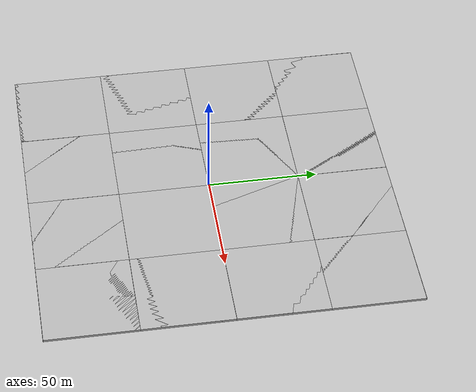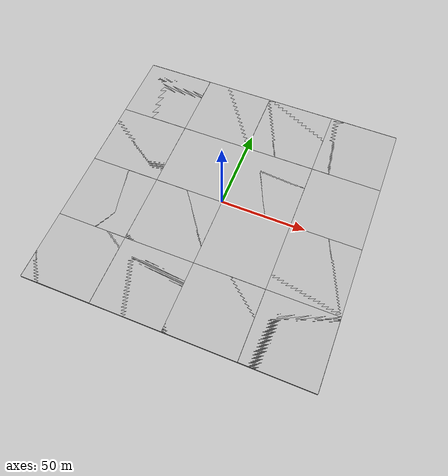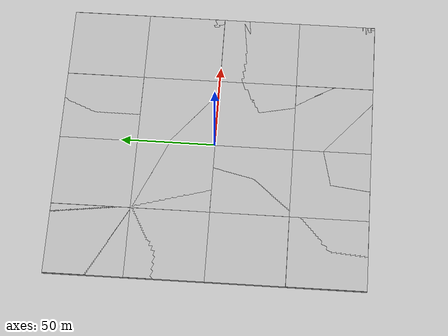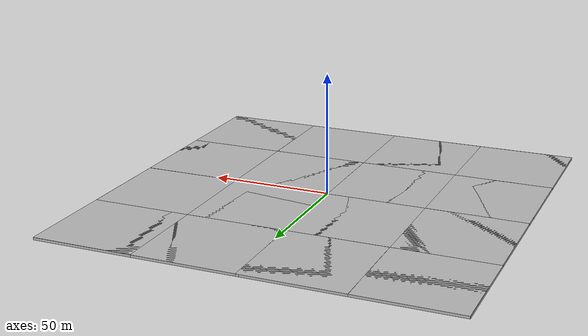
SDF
<sdf version="1.7">
 <world name="default">
  <physics type="ode">
   <ode>
    <solver>
     <type>quick</type>
     <iters>100</iters>
     <sor>1</sor>
     <use_dynamic_moi_rescaling>0</use_dynamic_moi_rescaling>
    </solver>
    <constraints>
     <cfm>0</cfm>
     <erp>0.9</erp>
     <contact_max_correcting_vel>0.1</contact_max_correcting_vel>
     <contact_surface_layer>0</contact_surface_layer>
    </constraints>
   </ode>
   <real_time_update_rate>1000</real_time_update_rate>
   <max_step_size>0.001</max_step_size>
   <real_time_factor>1</real_time_factor>
  </physics>
  <scene>
   <sky><clouds><speed>12</speed></clouds></sky>
   <ambient>0.4 0.4 0.4 1</ambient>
   <background>0.25 0.25 0.25 1</background>
   <shadows>1</shadows>
  </scene>
  <model name="ground_plane">
   <static>1</static>
   <link name="link">
    <collision name="collision">
     <geometry><plane><normal>0 0 1</normal><size>5000 5000</size></plane></geometry>
     <surface><friction><ode><mu>1</mu><mu2>1</mu2></ode></friction></surface>
    </collision>
   </link>
  </model>
  <light name="sun" type="directional">
   <pose>0 0 10 0 -0 0</pose>
   <diffuse>0.8 0.8 0.8 1</diffuse>
   <specular>0.2 0.2 0.2 1</specular>
   <attenuation>
    <range>1000</range>
    <constant>0.9</constant>
    <linear>0.01</linear>
    <quadratic>0.001</quadratic>
   </attenuation>
   <direction>-0.5 0.1 -0.9</direction>
   <spot><inner_angle>0</inner_angle><outer_angle>0</outer_angle><falloff>0</falloff></spot>
  </light>
  <plugin name="map" filename="libStaticMapPlugin.so">
   <center>29.72055 -95.40016</center>
   <world_size>150</world_size>
   <tile_size>640</tile_size>
   <map_type>satellite</map_type>
   <api_key>your_google_map_api</api_key>
   <use_cache>0</use_cache>
  </plugin>
  <gravity>0 0 -9.8</gravity>
  <magnetic_field>6e-06 2.3e-05 -4.2e-05</magnetic_field>
  <atmosphere type="adiabatic"/>
  <spherical_coordinates>
   <surface_model>EARTH_WGS84</surface_model>
   <latitude_deg>0</latitude_deg>
   <longitude_deg>0</longitude_deg>
   <elevation>0</elevation>
   <heading_deg>0</heading_deg>
  </spherical_coordinates>
  <model name="map_satellite_29.72055_-95.40016_150_150">
   <static>1</static>
   <link name="link">
    <collision name="collision">
     <pose>0 0 -0.5 0 -0 0</pose>
     <geometry><box><size>165.955 165.955 1</size></box></geometry>
    </collision>
    <visual name="visual0_0">
     <pose>-62.2331 62.2331 -0.5 0 -0 1.5708</pose>
     <geometry><box><size>41.4888 41.4888 1</size></box></geometry>
     <material>
      <script>
       <uri>model://map_satellite_29.72055_-95.40016_150_150/materials/scripts</uri>
       <uri>model://map_satellite_29.72055_-95.40016_150_150/materials/textures</uri>
       <name>map_satellite_29.72055_-95.40016_150_150/0_0</name>
      </script>
     </material>
    </visual>
    <visual name="visual0_1">
     <pose>-20.7444 62.2331 -0.5 0 -0 1.5708</pose>
     <geometry><box><size>41.4888 41.4888 1</size></box></geometry>
     <material>
      <script>
       <uri>model://map_satellite_29.72055_-95.40016_150_150/materials/scripts</uri>
       <uri>model://map_satellite_29.72055_-95.40016_150_150/materials/textures</uri>
       <name>map_satellite_29.72055_-95.40016_150_150/0_1</name>
      </script>
     </material>
    </visual>
    <visual name="visual0_2">
     <pose>20.7444 62.2331 -0.5 0 -0 1.5708</pose>
     <geometry><box><size>41.4888 41.4888 1</size></box></geometry>
     <material>
      <script>
       <uri>model://map_satellite_29.72055_-95.40016_150_150/materials/scripts</uri>
       <uri>model://map_satellite_29.72055_-95.40016_150_150/materials/textures</uri>
       <name>map_satellite_29.72055_-95.40016_150_150/0_2</name>
      </script>
     </material>
    </visual>
    <visual name="visual0_3">
     <pose>62.2331 62.2331 -0.5 0 -0 1.5708</pose>
     <geometry><box><size>41.4888 41.4888 1</size></box></geometry>
     <material>
      <script>
       <uri>model://map_satellite_29.72055_-95.40016_150_150/materials/scripts</uri>
       <uri>model://map_satellite_29.72055_-95.40016_150_150/materials/textures</uri>
       <name>map_satellite_29.72055_-95.40016_150_150/0_3</name>
      </script>
     </material>
    </visual>
    <visual name="visual1_0">
     <pose>-62.2331 20.7444 -0.5 0 -0 1.5708</pose>
     <geometry><box><size>41.4888 41.4888 1</size></box></geometry>
     <material>
      <script>
       <uri>model://map_satellite_29.72055_-95.40016_150_150/materials/scripts</uri>
       <uri>model://map_satellite_29.72055_-95.40016_150_150/materials/textures</uri>
       <name>map_satellite_29.72055_-95.40016_150_150/1_0</name>
      </script>
     </material>
    </visual>
    <visual name="visual1_1">
     <pose>-20.7444 20.7444 -0.5 0 -0 1.5708</pose>
     <geometry><box><size>41.4888 41.4888 1</size></box></geometry>
     <material>
      <script>
       <uri>model://map_satellite_29.72055_-95.40016_150_150/materials/scripts</uri>
       <uri>model://map_satellite_29.72055_-95.40016_150_150/materials/textures</uri>
       <name>map_satellite_29.72055_-95.40016_150_150/1_1</name>
      </script>
     </material>
    </visual>
    <visual name="visual1_2">
     <pose>20.7444 20.7444 -0.5 0 -0 1.5708</pose>
     <geometry><box><size>41.4888 41.4888 1</size></box></geometry>
     <material>
      <script>
       <uri>model://map_satellite_29.72055_-95.40016_150_150/materials/scripts</uri>
       <uri>model://map_satellite_29.72055_-95.40016_150_150/materials/textures</uri>
       <name>map_satellite_29.72055_-95.40016_150_150/1_2</name>
      </script>
     </material>
    </visual>
    <visual name="visual1_3">
     <pose>62.2331 20.7444 -0.5 0 -0 1.5708</pose>
     <geometry><box><size>41.4888 41.4888 1</size></box></geometry>
     <material>
      <script>
       <uri>model://map_satellite_29.72055_-95.40016_150_150/materials/scripts</uri>
       <uri>model://map_satellite_29.72055_-95.40016_150_150/materials/textures</uri>
       <name>map_satellite_29.72055_-95.40016_150_150/1_3</name>
      </script>
     </material>
    </visual>
    <visual name="visual2_0">
     <pose>-62.2331 -20.7444 -0.5 0 -0 1.5708</pose>
     <geometry><box><size>41.4888 41.4888 1</size></box></geometry>
     <material>
      <script>
       <uri>model://map_satellite_29.72055_-95.40016_150_150/materials/scripts</uri>
       <uri>model://map_satellite_29.72055_-95.40016_150_150/materials/textures</uri>
       <name>map_satellite_29.72055_-95.40016_150_150/2_0</name>
      </script>
     </material>
    </visual>
    <visual name="visual2_1">
     <pose>-20.7444 -20.7444 -0.5 0 -0 1.5708</pose>
     <geometry><box><size>41.4888 41.4888 1</size></box></geometry>
     <material>
      <script>
       <uri>model://map_satellite_29.72055_-95.40016_150_150/materials/scripts</uri>
       <uri>model://map_satellite_29.72055_-95.40016_150_150/materials/textures</uri>
       <name>map_satellite_29.72055_-95.40016_150_150/2_1</name>
      </script>
     </material>
    </visual>
    <visual name="visual2_2">
     <pose>20.7444 -20.7444 -0.5 0 -0 1.5708</pose>
     <geometry><box><size>41.4888 41.4888 1</size></box></geometry>
     <material>
      <script>
       <uri>model://map_satellite_29.72055_-95.40016_150_150/materials/scripts</uri>
       <uri>model://map_satellite_29.72055_-95.40016_150_150/materials/textures</uri>
       <name>map_satellite_29.72055_-95.40016_150_150/2_2</name>
      </script>
     </material>
    </visual>
    <visual name="visual2_3">
     <pose>62.2331 -20.7444 -0.5 0 -0 1.5708</pose>
     <geometry><box><size>41.4888 41.4888 1</size></box></geometry>
     <material>
      <script>
       <uri>model://map_satellite_29.72055_-95.40016_150_150/materials/scripts</uri>
       <uri>model://map_satellite_29.72055_-95.40016_150_150/materials/textures</uri>
       <name>map_satellite_29.72055_-95.40016_150_150/2_3</name>
      </script>
     </material>
    </visual>
    <visual name="visual3_0">
     <pose>-62.2331 -62.2331 -0.5 0 -0 1.5708</pose>
     <geometry><box><size>41.4888 41.4888 1</size></box></geometry>
     <material>
      <script>
       <uri>model://map_satellite_29.72055_-95.40016_150_150/materials/scripts</uri>
       <uri>model://map_satellite_29.72055_-95.40016_150_150/materials/textures</uri>
       <name>map_satellite_29.72055_-95.40016_150_150/3_0</name>
      </script>
     </material>
    </visual>
    <visual name="visual3_1">
     <pose>-20.7444 -62.2331 -0.5 0 -0 1.5708</pose>
     <geometry><box><size>41.4888 41.4888 1</size></box></geometry>
     <material>
      <script>
       <uri>model://map_satellite_29.72055_-95.40016_150_150/materials/scripts</uri>
       <uri>model://map_satellite_29.72055_-95.40016_150_150/materials/textures</uri>
       <name>map_satellite_29.72055_-95.40016_150_150/3_1</name>
      </script>
     </material>
    </visual>
    <visual name="visual3_2">
     <pose>20.7444 -62.2331 -0.5 0 -0 1.5708</pose>
     <geometry><box><size>41.4888 41.4888 1</size></box></geometry>
     <material>
      <script>
       <uri>model://map_satellite_29.72055_-95.40016_150_150/materials/scripts</uri>
       <uri>model://map_satellite_29.72055_-95.40016_150_150/materials/textures</uri>
       <name>map_satellite_29.72055_-95.40016_150_150/3_2</name>
      </script>
     </material>
    </visual>
    <visual name="visual3_3">
     <pose>62.2331 -62.2331 -0.5 0 -0 1.5708</pose>
     <geometry><box><size>41.4888 41.4888 1</size></box></geometry>
     <material>
      <script>
       <uri>model://map_satellite_29.72055_-95.40016_150_150/materials/scripts</uri>
       <uri>model://map_satellite_29.72055_-95.40016_150_150/materials/textures</uri>
       <name>map_satellite_29.72055_-95.40016_150_150/3_3</name>
      </script>
     </material>
    </visual>
   </link>
  </model>
  <model name="map_satellite_29.72055_-95.40016_150_150_0">
   <static>1</static>
   <link name="link">
    <collision name="collision">
     <pose>0 0 -0.5 0 -0 0</pose>
     <geometry><box><size>165.955 165.955 1</size></box></geometry>
    </collision>
    <visual name="visual0_0">
     <pose>-62.2331 62.2331 -0.5 0 -0 1.5708</pose>
     <geometry><box><size>41.4888 41.4888 1</size></box></geometry>
     <material>
      <script>
       <uri>model://map_satellite_29.72055_-95.40016_150_150/materials/scripts</uri>
       <uri>model://map_satellite_29.72055_-95.40016_150_150/materials/textures</uri>
       <name>map_satellite_29.72055_-95.40016_150_150/0_0</name>
      </script>
     </material>
    </visual>
    <visual name="visual0_1">
     <pose>-20.7444 62.2331 -0.5 0 -0 1.5708</pose>
     <geometry><box><size>41.4888 41.4888 1</size></box></geometry>
     <material>
      <script>
       <uri>model://map_satellite_29.72055_-95.40016_150_150/materials/scripts</uri>
       <uri>model://map_satellite_29.72055_-95.40016_150_150/materials/textures</uri>
       <name>map_satellite_29.72055_-95.40016_150_150/0_1</name>
      </script>
     </material>
    </visual>
    <visual name="visual0_2">
     <pose>20.7444 62.2331 -0.5 0 -0 1.5708</pose>
     <geometry><box><size>41.4888 41.4888 1</size></box></geometry>
     <material>
      <script>
       <uri>model://map_satellite_29.72055_-95.40016_150_150/materials/scripts</uri>
       <uri>model://map_satellite_29.72055_-95.40016_150_150/materials/textures</uri>
       <name>map_satellite_29.72055_-95.40016_150_150/0_2</name>
      </script>
     </material>
    </visual>
    <visual name="visual0_3">
     <pose>62.2331 62.2331 -0.5 0 -0 1.5708</pose>
     <geometry><box><size>41.4888 41.4888 1</size></box></geometry>
     <material>
      <script>
       <uri>model://map_satellite_29.72055_-95.40016_150_150/materials/scripts</uri>
       <uri>model://map_satellite_29.72055_-95.40016_150_150/materials/textures</uri>
       <name>map_satellite_29.72055_-95.40016_150_150/0_3</name>
      </script>
     </material>
    </visual>
    <visual name="visual1_0">
     <pose>-62.2331 20.7444 -0.5 0 -0 1.5708</pose>
     <geometry><box><size>41.4888 41.4888 1</size></box></geometry>
     <material>
      <script>
       <uri>model://map_satellite_29.72055_-95.40016_150_150/materials/scripts</uri>
       <uri>model://map_satellite_29.72055_-95.40016_150_150/materials/textures</uri>
       <name>map_satellite_29.72055_-95.40016_150_150/1_0</name>
      </script>
     </material>
    </visual>
    <visual name="visual1_1">
     <pose>-20.7444 20.7444 -0.5 0 -0 1.5708</pose>
     <geometry><box><size>41.4888 41.4888 1</size></box></geometry>
     <material>
      <script>
       <uri>model://map_satellite_29.72055_-95.40016_150_150/materials/scripts</uri>
       <uri>model://map_satellite_29.72055_-95.40016_150_150/materials/textures</uri>
       <name>map_satellite_29.72055_-95.40016_150_150/1_1</name>
      </script>
     </material>
    </visual>
    <visual name="visual1_2">
     <pose>20.7444 20.7444 -0.5 0 -0 1.5708</pose>
     <geometry><box><size>41.4888 41.4888 1</size></box></geometry>
     <material>
      <script>
       <uri>model://map_satellite_29.72055_-95.40016_150_150/materials/scripts</uri>
       <uri>model://map_satellite_29.72055_-95.40016_150_150/materials/textures</uri>
       <name>map_satellite_29.72055_-95.40016_150_150/1_2</name>
      </script>
     </material>
    </visual>
    <visual name="visual1_3">
     <pose>62.2331 20.7444 -0.5 0 -0 1.5708</pose>
     <geometry><box><size>41.4888 41.4888 1</size></box></geometry>
     <material>
      <script>
       <uri>model://map_satellite_29.72055_-95.40016_150_150/materials/scripts</uri>
       <uri>model://map_satellite_29.72055_-95.40016_150_150/materials/textures</uri>
       <name>map_satellite_29.72055_-95.40016_150_150/1_3</name>
      </script>
     </material>
    </visual>
    <visual name="visual2_0">
     <pose>-62.2331 -20.7444 -0.5 0 -0 1.5708</pose>
     <geometry><box><size>41.4888 41.4888 1</size></box></geometry>
     <material>
      <script>
       <uri>model://map_satellite_29.72055_-95.40016_150_150/materials/scripts</uri>
       <uri>model://map_satellite_29.72055_-95.40016_150_150/materials/textures</uri>
       <name>map_satellite_29.72055_-95.40016_150_150/2_0</name>
      </script>
     </material>
    </visual>
    <visual name="visual2_1">
     <pose>-20.7444 -20.7444 -0.5 0 -0 1.5708</pose>
     <geometry><box><size>41.4888 41.4888 1</size></box></geometry>
     <material>
      <script>
       <uri>model://map_satellite_29.72055_-95.40016_150_150/materials/scripts</uri>
       <uri>model://map_satellite_29.72055_-95.40016_150_150/materials/textures</uri>
       <name>map_satellite_29.72055_-95.40016_150_150/2_1</name>
      </script>
     </material>
    </visual>
    <visual name="visual2_2">
     <pose>20.7444 -20.7444 -0.5 0 -0 1.5708</pose>
     <geometry><box><size>41.4888 41.4888 1</size></box></geometry>
     <material>
      <script>
       <uri>model://map_satellite_29.72055_-95.40016_150_150/materials/scripts</uri>
       <uri>model://map_satellite_29.72055_-95.40016_150_150/materials/textures</uri>
       <name>map_satellite_29.72055_-95.40016_150_150/2_2</name>
      </script>
     </material>
    </visual>
    <visual name="visual2_3">
     <pose>62.2331 -20.7444 -0.5 0 -0 1.5708</pose>
     <geometry><box><size>41.4888 41.4888 1</size></box></geometry>
     <material>
      <script>
       <uri>model://map_satellite_29.72055_-95.40016_150_150/materials/scripts</uri>
       <uri>model://map_satellite_29.72055_-95.40016_150_150/materials/textures</uri>
       <name>map_satellite_29.72055_-95.40016_150_150/2_3</name>
      </script>
     </material>
    </visual>
    <visual name="visual3_0">
     <pose>-62.2331 -62.2331 -0.5 0 -0 1.5708</pose>
     <geometry><box><size>41.4888 41.4888 1</size></box></geometry>
     <material>
      <script>
       <uri>model://map_satellite_29.72055_-95.40016_150_150/materials/scripts</uri>
       <uri>model://map_satellite_29.72055_-95.40016_150_150/materials/textures</uri>
       <name>map_satellite_29.72055_-95.40016_150_150/3_0</name>
      </script>
     </material>
    </visual>
    <visual name="visual3_1">
     <pose>-20.7444 -62.2331 -0.5 0 -0 1.5708</pose>
     <geometry><box><size>41.4888 41.4888 1</size></box></geometry>
     <material>
      <script>
       <uri>model://map_satellite_29.72055_-95.40016_150_150/materials/scripts</uri>
       <uri>model://map_satellite_29.72055_-95.40016_150_150/materials/textures</uri>
       <name>map_satellite_29.72055_-95.40016_150_150/3_1</name>
      </script>
     </material>
    </visual>
    <visual name="visual3_2">
     <pose>20.7444 -62.2331 -0.5 0 -0 1.5708</pose>
     <geometry><box><size>41.4888 41.4888 1</size></box></geometry>
     <material>
      <script>
       <uri>model://map_satellite_29.72055_-95.40016_150_150/materials/scripts</uri>
       <uri>model://map_satellite_29.72055_-95.40016_150_150/materials/textures</uri>
       <name>map_satellite_29.72055_-95.40016_150_150/3_2</name>
      </script>
     </material>
    </visual>
    <visual name="visual3_3">
     <pose>62.2331 -62.2331 -0.5 0 -0 1.5708</pose>
     <geometry><box><size>41.4888 41.4888 1</size></box></geometry>
     <material>
      <script>
       <uri>model://map_satellite_29.72055_-95.40016_150_150/materials/scripts</uri>
       <uri>model://map_satellite_29.72055_-95.40016_150_150/materials/textures</uri>
       <name>map_satellite_29.72055_-95.40016_150_150/3_3</name>
      </script>
     </material>
    </visual>
   </link>
  </model>
  <model name="map_satellite_29.72055_-95.40016_150_150_1">
   <static>1</static>
   <link name="link">
    <collision name="collision">
     <pose>0 0 -0.5 0 -0 0</pose>
     <geometry><box><size>165.955 165.955 1</size></box></geometry>
    </collision>
    <visual name="visual0_0">
     <pose>-62.2331 62.2331 -0.5 0 -0 1.5708</pose>
     <geometry><box><size>41.4888 41.4888 1</size></box></geometry>
     <material>
      <script>
       <uri>model://map_satellite_29.72055_-95.40016_150_150/materials/scripts</uri>
       <uri>model://map_satellite_29.72055_-95.40016_150_150/materials/textures</uri>
       <name>map_satellite_29.72055_-95.40016_150_150/0_0</name>
      </script>
     </material>
    </visual>
    <visual name="visual0_1">
     <pose>-20.7444 62.2331 -0.5 0 -0 1.5708</pose>
     <geometry><box><size>41.4888 41.4888 1</size></box></geometry>
     <material>
      <script>
       <uri>model://map_satellite_29.72055_-95.40016_150_150/materials/scripts</uri>
       <uri>model://map_satellite_29.72055_-95.40016_150_150/materials/textures</uri>
       <name>map_satellite_29.72055_-95.40016_150_150/0_1</name>
      </script>
     </material>
    </visual>
    <visual name="visual0_2">
     <pose>20.7444 62.2331 -0.5 0 -0 1.5708</pose>
     <geometry><box><size>41.4888 41.4888 1</size></box></geometry>
     <material>
      <script>
       <uri>model://map_satellite_29.72055_-95.40016_150_150/materials/scripts</uri>
       <uri>model://map_satellite_29.72055_-95.40016_150_150/materials/textures</uri>
       <name>map_satellite_29.72055_-95.40016_150_150/0_2</name>
      </script>
     </material>
    </visual>
    <visual name="visual0_3">
     <pose>62.2331 62.2331 -0.5 0 -0 1.5708</pose>
     <geometry><box><size>41.4888 41.4888 1</size></box></geometry>
     <material>
      <script>
       <uri>model://map_satellite_29.72055_-95.40016_150_150/materials/scripts</uri>
       <uri>model://map_satellite_29.72055_-95.40016_150_150/materials/textures</uri>
       <name>map_satellite_29.72055_-95.40016_150_150/0_3</name>
      </script>
     </material>
    </visual>
    <visual name="visual1_0">
     <pose>-62.2331 20.7444 -0.5 0 -0 1.5708</pose>
     <geometry><box><size>41.4888 41.4888 1</size></box></geometry>
     <material>
      <script>
       <uri>model://map_satellite_29.72055_-95.40016_150_150/materials/scripts</uri>
       <uri>model://map_satellite_29.72055_-95.40016_150_150/materials/textures</uri>
       <name>map_satellite_29.72055_-95.40016_150_150/1_0</name>
      </script>
     </material>
    </visual>
    <visual name="visual1_1">
     <pose>-20.7444 20.7444 -0.5 0 -0 1.5708</pose>
     <geometry><box><size>41.4888 41.4888 1</size></box></geometry>
     <material>
      <script>
       <uri>model://map_satellite_29.72055_-95.40016_150_150/materials/scripts</uri>
       <uri>model://map_satellite_29.72055_-95.40016_150_150/materials/textures</uri>
       <name>map_satellite_29.72055_-95.40016_150_150/1_1</name>
      </script>
     </material>
    </visual>
    <visual name="visual1_2">
     <pose>20.7444 20.7444 -0.5 0 -0 1.5708</pose>
     <geometry><box><size>41.4888 41.4888 1</size></box></geometry>
     <material>
      <script>
       <uri>model://map_satellite_29.72055_-95.40016_150_150/materials/scripts</uri>
       <uri>model://map_satellite_29.72055_-95.40016_150_150/materials/textures</uri>
       <name>map_satellite_29.72055_-95.40016_150_150/1_2</name>
      </script>
     </material>
    </visual>
    <visual name="visual1_3">
     <pose>62.2331 20.7444 -0.5 0 -0 1.5708</pose>
     <geometry><box><size>41.4888 41.4888 1</size></box></geometry>
     <material>
      <script>
       <uri>model://map_satellite_29.72055_-95.40016_150_150/materials/scripts</uri>
       <uri>model://map_satellite_29.72055_-95.40016_150_150/materials/textures</uri>
       <name>map_satellite_29.72055_-95.40016_150_150/1_3</name>
      </script>
     </material>
    </visual>
    <visual name="visual2_0">
     <pose>-62.2331 -20.7444 -0.5 0 -0 1.5708</pose>
     <geometry><box><size>41.4888 41.4888 1</size></box></geometry>
     <material>
      <script>
       <uri>model://map_satellite_29.72055_-95.40016_150_150/materials/scripts</uri>
       <uri>model://map_satellite_29.72055_-95.40016_150_150/materials/textures</uri>
       <name>map_satellite_29.72055_-95.40016_150_150/2_0</name>
      </script>
     </material>
    </visual>
    <visual name="visual2_1">
     <pose>-20.7444 -20.7444 -0.5 0 -0 1.5708</pose>
     <geometry><box><size>41.4888 41.4888 1</size></box></geometry>
     <material>
      <script>
       <uri>model://map_satellite_29.72055_-95.40016_150_150/materials/scripts</uri>
       <uri>model://map_satellite_29.72055_-95.40016_150_150/materials/textures</uri>
       <name>map_satellite_29.72055_-95.40016_150_150/2_1</name>
      </script>
     </material>
    </visual>
    <visual name="visual2_2">
     <pose>20.7444 -20.7444 -0.5 0 -0 1.5708</pose>
     <geometry><box><size>41.4888 41.4888 1</size></box></geometry>
     <material>
      <script>
       <uri>model://map_satellite_29.72055_-95.40016_150_150/materials/scripts</uri>
       <uri>model://map_satellite_29.72055_-95.40016_150_150/materials/textures</uri>
       <name>map_satellite_29.72055_-95.40016_150_150/2_2</name>
      </script>
     </material>
    </visual>
    <visual name="visual2_3">
     <pose>62.2331 -20.7444 -0.5 0 -0 1.5708</pose>
     <geometry><box><size>41.4888 41.4888 1</size></box></geometry>
     <material>
      <script>
       <uri>model://map_satellite_29.72055_-95.40016_150_150/materials/scripts</uri>
       <uri>model://map_satellite_29.72055_-95.40016_150_150/materials/textures</uri>
       <name>map_satellite_29.72055_-95.40016_150_150/2_3</name>
      </script>
     </material>
    </visual>
    <visual name="visual3_0">
     <pose>-62.2331 -62.2331 -0.5 0 -0 1.5708</pose>
     <geometry><box><size>41.4888 41.4888 1</size></box></geometry>
     <material>
      <script>
       <uri>model://map_satellite_29.72055_-95.40016_150_150/materials/scripts</uri>
       <uri>model://map_satellite_29.72055_-95.40016_150_150/materials/textures</uri>
       <name>map_satellite_29.72055_-95.40016_150_150/3_0</name>
      </script>
     </material>
    </visual>
    <visual name="visual3_1">
     <pose>-20.7444 -62.2331 -0.5 0 -0 1.5708</pose>
     <geometry><box><size>41.4888 41.4888 1</size></box></geometry>
     <material>
      <script>
       <uri>model://map_satellite_29.72055_-95.40016_150_150/materials/scripts</uri>
       <uri>model://map_satellite_29.72055_-95.40016_150_150/materials/textures</uri>
       <name>map_satellite_29.72055_-95.40016_150_150/3_1</name>
      </script>
     </material>
    </visual>
    <visual name="visual3_2">
     <pose>20.7444 -62.2331 -0.5 0 -0 1.5708</pose>
     <geometry><box><size>41.4888 41.4888 1</size></box></geometry>
     <material>
      <script>
       <uri>model://map_satellite_29.72055_-95.40016_150_150/materials/scripts</uri>
       <uri>model://map_satellite_29.72055_-95.40016_150_150/materials/textures</uri>
       <name>map_satellite_29.72055_-95.40016_150_150/3_2</name>
      </script>
     </material>
    </visual>
    <visual name="visual3_3">
     <pose>62.2331 -62.2331 -0.5 0 -0 1.5708</pose>
     <geometry><box><size>41.4888 41.4888 1</size></box></geometry>
     <material>
      <script>
       <uri>model://map_satellite_29.72055_-95.40016_150_150/materials/scripts</uri>
       <uri>model://map_satellite_29.72055_-95.40016_150_150/materials/textures</uri>
       <name>map_satellite_29.72055_-95.40016_150_150/3_3</name>
      </script>
     </material>
    </visual>
   </link>
   <pose>-0.009978 0.002189 0 0 -0 0.001536</pose>
  </model>
 </world>
</sdf>
